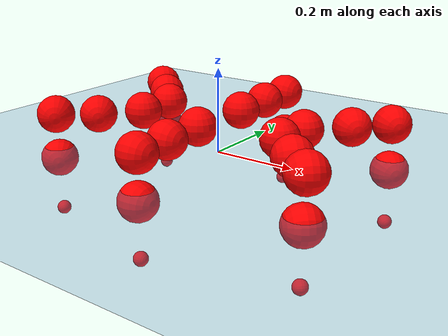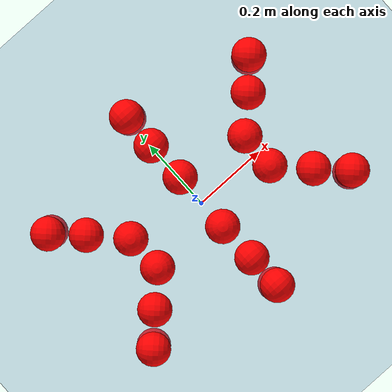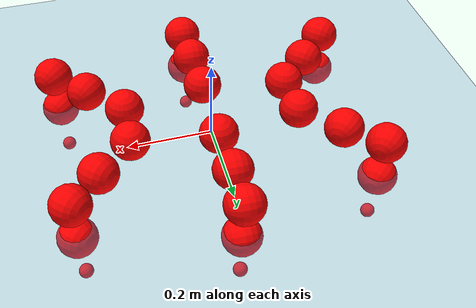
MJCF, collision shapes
<mujoco model="Golem">
  <compiler angle="radian" assetdir="assets" balanceinertia="true" inertiafromgeom="false"/>

  <option timestep="0.005" density="1.2" viscosity="2e-05"/>

  <size nkey="1"/>

  <visual>
    <quality shadowsize="8192"/>
    <map shadowclip="0.5"/>
  </visual>

  <default>
    <default class="/">
      <joint armature="0.01" damping="0.01" frictionloss="0.01"/>
      <geom contype="0" conaffinity="0" group="1" solref="-1000 -80"/>
      <site size="0.01 0.005 0.005" group="5"/>
      <general forcelimited="true" biastype="affine" gainprm="25" biasprm="0 -25 -0.5"/>
      <default class="visual">
        <geom type="mesh" group="2"/>
      </default>
      <default class="collision">
        <geom group="3"/>
      </default>
      <default class="foot">
        <geom size="0.01 0 0" condim="6" group="4" priority="1" solimp="0.015 1 0.01"/>
      </default>
      <default class="reward_collision_sphere">
        <geom group="5" rgba="1 0 0 1"/>
      </default>
    </default>
  </default>

  <asset>
    <texture type="skybox" colorspace="auto" name="//unnamed_texture_0" builtin="gradient" rgb1="0.95 0.95 0.95" rgb2="0.95 0.95 0.95" width="100" height="600"/>
    <texture type="2d" colorspace="auto" name="texplane" builtin="checker" rgb1="0.345 0.575 0.748" rgb2="0.345 0.575 0.748" markrgb="1 1 1" width="512" height="512"/>
    <material name="MatPlane" class="/" texture="texplane" texuniform="true" texrepeat="2 2" specular="0.9"/>
    <mesh name="body" class="/" file="body.stl" scale="0.001 0.001 0.001"/>
    <mesh name="coxa" class="/" file="coxa.stl" scale="0.001 0.001 0.001"/>
    <mesh name="femur" class="/" file="femur.stl" scale="0.001 0.001 0.001"/>
    <mesh name="tibia" class="/" file="tibia.stl" scale="0.001 0.001 0.001"/>
    <mesh name="tarsus" class="/" file="tarsus.stl" scale="0.001 0.001 0.001"/>
  </asset>

  <worldbody>
    <geom name="floor" class="/" size="100 100 0.125" type="plane" group="0" material="MatPlane"/>
    <light name="toplight_shadow" class="/" pos="0 0 5" dir="0.0990148 0.0990148 -0.990148" type="directional" ambient="0.04 0.04 0.04" diffuse="0.55 0.55 0.55" specular="0.12 0.12 0.12"/>
    <light name="toplight_fill" class="/" pos="0 0 5" dir="0.0990148 0.0990148 -0.990148" type="directional" castshadow="false" ambient="0.04 0.04 0.04" diffuse="0.3 0.3 0.3" specular="0.08 0.08 0.08"/>
    <body name="trunk" pos="0.00229978 0.00248523 0.00223979" quat="1 -2.2481e-05 -1.42347e-05 6.73234e-05">
      <inertial pos="0.000446487 -0.000953794 -0.00121682" quat="1 -0.000223313 -0.000201111 1.35754e-05" mass="5.21577" diaginertia="0.0267101 0.00596704 0.0279323"/>
      <joint name="//unnamed_joint_0" type="free"/>
      <geom name="//unnamed_geom_1" class="/" pos="0 0 0.0785473" quat="1 0 0 0" type="mesh" rgba="0.9 0.9 0.9 1" mesh="body"/>
      <site name="imu" class="/" pos="0.172822 0.013292 0.124284" size="0.011202"/>
      <camera name="track" class="/" pos="0 -1.80452 0" quat="0.707107 0.707107 0 0" mode="trackcom"/>
      <camera name="ego_camera" class="/" pos="0.160035 0 0.12273" quat="-0.5 -0.5 0.5 0.5"/>
      <body name="coxa_RR" pos="-0.219482 -0.0761928 0.0783235" quat="0.382605 -1.52652e-05 0.000184024 -0.923912">
        <inertial pos="-0.000544093 -0.00201833 -0.00117978" quat="0.999903 0.0127628 -0.00551623 -0.000349771" mass="0.271373" diaginertia="0.0270514 0.00571928 0.0266216"/>
        <joint name="coxa_joint_RR" class="/" pos="0 0 0" axis="-0.00113343 -0.00354845 -0.999993" range="-3.13511 3.14341" armature="0.00978954" damping="0" frictionloss="0.0111851"/>
        <geom name="//unnamed_geom_2" class="/" type="mesh" rgba="0.2 0.2 0.2 1" mesh="coxa"/>
        <geom name="//unnamed_geom_3" class="reward_collision_sphere" size="0.044808" pos="-0.0369311 0 0"/>
        <body name="femur_RR" pos="0.0704822 -0.00115221 -0.00411897" quat="0.499876 -0.499998 0.499906 0.50022">
          <inertial pos="-0.00196056 -0.00125567 -0.000278239" quat="0.999998 0.00200298 0.000480362 0.000586553" mass="0.282778" diaginertia="0.0285126 0.00603608 0.0286131"/>
          <joint name="femur_joint_RR" class="/" pos="0 0 0" axis="0.000241573 0.000262536 -1" range="-3.19319 3.08351" armature="0.0112353" damping="0.00965856" frictionloss="0.0127515"/>
          <geom name="//unnamed_geom_4" class="/" type="mesh" rgba="0.9 0.9 0.9 1" mesh="femur"/>
          <geom name="//unnamed_geom_5" class="reward_collision_sphere" size="0.044808"/>
          <body name="tibia_RR" pos="-0.00437471 -0.100059 0.00229893" quat="0.000728692 1 0.000651698 -0.000193849">
            <inertial pos="-0.00269764 0.000531846 2.36772e-05" quat="1 -0.000280083 -0.000386352 -0.000681626" mass="0.281877" diaginertia="0.0277282 0.00578574 0.026092"/>
            <joint name="tibia_joint_RR" class="/" pos="0 0 0" axis="-0.0103728 0.00693602 0.999922" range="-3.10596 3.19012" armature="0.0117389" damping="6.45885e-06" frictionloss="0.0111388"/>
            <geom name="//unnamed_geom_6" class="/" type="mesh" rgba="0.2 0.2 0.2 1" mesh="tibia"/>
            <geom name="//unnamed_geom_7" class="reward_collision_sphere" size="0.044808"/>
            <body name="tarsus_RR" pos="0.110084 -0.000475211 0.00216674" quat="1 1.97847e-05 5.91455e-06 3.41551e-05">
              <inertial pos="0.0772139 0.000513833 0.00188399" quat="0.500062 0.500463 0.499947 0.499527" mass="0.284716" diaginertia="0.0284424 0.0061485 0.0283297"/>
              <joint name="tarsus_joint_RR" class="/" pos="0 0 0" axis="-0.000994999 0.00719389 0.999974" range="-3.19267 3.19213" armature="0.0111642" damping="0.0393865" frictionloss="0.010124"/>
              <geom name="//unnamed_geom_8" class="/" type="mesh" rgba="0.9 0.9 0.9 1" mesh="tarsus"/>
              <geom name="foot_1" class="foot" size="0.0113309" pos="0.137876 0 0" quat="0 -0.707107 0 0.707107"/>
              <geom name="//unnamed_geom_10" class="reward_collision_sphere" size="0.044808"/>
              <geom name="//unnamed_geom_11" class="reward_collision_sphere" size="0.016803" pos="0.132336 0 0"/>
              <site name="foot_1" class="foot" pos="0.137876 0 0" quat="0 -0.707107 0 0.707107" size="0.011202"/>
            </body>
          </body>
        </body>
      </body>
      <body name="coxa_RM" pos="-0.000406857 -0.119169 0.0800777" quat="0.706469 0.000935216 8.73946e-05 -0.707743">
        <inertial pos="0.00292044 0.000327265 -0.00152062" quat="0.999962 -0.00306106 0.00705325 -0.0041437" mass="0.2766" diaginertia="0.0276113 0.00584123 0.0289092"/>
        <joint name="coxa_joint_RM" class="/" pos="0 0 0" axis="0.000576426 0.00109202 -0.999999" stiffness="0.0079082" range="-3.1617 3.12409" armature="0.0110339" damping="0.000752216" frictionloss="0.010316"/>
        <geom name="//unnamed_geom_12" class="/" type="mesh" rgba="0.2 0.2 0.2 1" mesh="coxa"/>
        <geom name="//unnamed_geom_13" class="reward_collision_sphere" size="0.044808" pos="-0.0369311 0 0"/>
        <body name="femur_RM" pos="0.0717664 0.00248775 -0.000941413" quat="0.499972 -0.500714 0.499069 0.500243">
          <inertial pos="-0.000335469 -0.00164905 0.000106608" quat="0.99999 -0.00113778 0.00343036 -0.00260536" mass="0.289054" diaginertia="0.0289641 0.005917 0.0287372"/>
          <joint name="femur_joint_RM" class="/" pos="0 0 0" axis="-0.00375344 -0.0115221 -0.999927" stiffness="0.00832054" range="-3.15834 3.1439" armature="0.0101644" damping="0.0266489" frictionloss="0.0111924"/>
          <geom name="//unnamed_geom_14" class="/" type="mesh" rgba="0.9 0.9 0.9 1" mesh="femur"/>
          <geom name="//unnamed_geom_15" class="reward_collision_sphere" size="0.044808"/>
          <body name="tibia_RM" pos="0.00148426 -0.0955533 0.00194747" quat="8.95361e-06 1 5.18852e-05 8.0542e-05">
            <inertial pos="0.00277825 -0.00226211 0.000103181" quat="0.999914 0.00548748 0.00507764 0.010756" mass="0.268245" diaginertia="0.0277415 0.00604932 0.0278218"/>
            <joint name="tibia_joint_RM" class="/" pos="0 0 0" axis="0.000201098 0.000461472 1" stiffness="0.000135723" range="-3.1921 3.1713" armature="0.011109" damping="0.01379" frictionloss="0.0109931"/>
            <geom name="//unnamed_geom_16" class="/" type="mesh" rgba="0.2 0.2 0.2 1" mesh="tibia"/>
            <geom name="//unnamed_geom_17" class="reward_collision_sphere" size="0.044808"/>
            <body name="tarsus_RM" pos="0.107856 -0.00017735 0.0030159" quat="1 -5.37349e-05 3.13755e-05 -2.5772e-05">
              <inertial pos="0.0739222 -0.00228823 0.00300975" quat="0.498758 0.509036 0.494622 0.497466" mass="0.288976" diaginertia="0.0273357 0.00579334 0.0268715"/>
              <joint name="tarsus_joint_RM" class="/" pos="0 0 0" axis="-0.000337954 -0.0010349 0.999999" range="-3.08681 3.13574" armature="0.012054" damping="0.0121209" frictionloss="0.0108995"/>
              <geom name="//unnamed_geom_18" class="/" type="mesh" rgba="0.9 0.9 0.9 1" mesh="tarsus"/>
              <geom name="foot_2" class="foot" size="0.0112725" pos="0.137876 0 0" quat="0 -0.707107 0 0.707107"/>
              <geom name="//unnamed_geom_20" class="reward_collision_sphere" size="0.044808"/>
              <geom name="//unnamed_geom_21" class="reward_collision_sphere" size="0.016803" pos="0.132336 0 0"/>
              <site name="foot_2" class="foot" pos="0.137876 0 0" quat="0 -0.707107 0 0.707107" size="0.011202"/>
            </body>
          </body>
        </body>
      </body>
      <body name="coxa_RF" pos="0.217959 -0.072991 0.0808097" quat="0.923852 0.000633757 6.95777e-05 -0.382749">
        <inertial pos="-0.000238623 0.00232724 -5.7636e-05" quat="1 -0.000394412 0.000110101 -0.000350374" mass="0.276968" diaginertia="0.0282903 0.00598187 0.0270112"/>
        <joint name="coxa_joint_RF" class="/" pos="0 0 0" axis="0.00175851 -0.000634004 -0.999998" range="-3.14056 3.13488" armature="0.0127412" damping="0.00724728" frictionloss="0.0108161"/>
        <geom name="//unnamed_geom_22" class="/" type="mesh" rgba="0.2 0.2 0.2 1" mesh="coxa"/>
        <geom name="//unnamed_geom_23" class="reward_collision_sphere" size="0.044808" pos="-0.0369311 0 0"/>
        <body name="femur_RF" pos="0.0746447 -0.00106581 -0.00099439" quat="0.500356 -0.499924 0.500086 0.499633">
          <inertial pos="0.00153335 -0.00277832 -0.000316535" quat="0.99997 -0.00362444 0.000342656 -0.00680995" mass="0.274094" diaginertia="0.028255 0.00565295 0.0280442"/>
          <joint name="femur_joint_RF" class="/" pos="0 0 0" axis="0.000455808 -0.0013498 -0.999999" stiffness="0.00627888" range="-3.18353 3.148" armature="0.00954169" damping="0.00868909" frictionloss="0.0127802"/>
          <geom name="//unnamed_geom_24" class="/" type="mesh" rgba="0.9 0.9 0.9 1" mesh="femur"/>
          <geom name="//unnamed_geom_25" class="reward_collision_sphere" size="0.044808"/>
          <body name="tibia_RF" pos="-0.00269212 -0.0981003 0.00129972" quat="-4.96382e-05 1 -0.000105323 2.93397e-05">
            <inertial pos="-0.0017809 0.000493482 0.00059208" quat="0.999999 -0.00010049 -0.000580333 -0.000825517" mass="0.287961" diaginertia="0.0272083 0.00613241 0.0274529"/>
            <joint name="tibia_joint_RF" class="/" pos="0 0 0" axis="0.00982492 -0.00117047 0.999951" range="-3.13781 3.09575" armature="0.0106812" damping="0.00653044" frictionloss="0.0112068"/>
            <geom name="//unnamed_geom_26" class="/" type="mesh" rgba="0.2 0.2 0.2 1" mesh="tibia"/>
            <geom name="//unnamed_geom_27" class="reward_collision_sphere" size="0.044808"/>
            <body name="tarsus_RF" pos="0.105052 0.00207251 0.00331471" quat="0.999999 0.000879391 -0.000836657 -6.68476e-05">
              <inertial pos="0.0734519 -0.000529719 0.000245394" quat="0.499958 0.500073 0.500554 0.499415" mass="0.283387" diaginertia="0.0278734 0.00600492 0.0285817"/>
              <joint name="tarsus_joint_RF" class="/" pos="0 0 0" axis="-0.000102068 0.0145913 0.999894" range="-3.16514 3.14202" armature="0.0125703" damping="0.0144701" frictionloss="0.0100375"/>
              <geom name="//unnamed_geom_28" class="/" type="mesh" rgba="0.9 0.9 0.9 1" mesh="tarsus"/>
              <geom name="foot_3" class="foot" size="0.0122732" pos="0.137876 0 0" quat="0 -0.707107 0 0.707107"/>
              <geom name="//unnamed_geom_30" class="reward_collision_sphere" size="0.044808"/>
              <geom name="//unnamed_geom_31" class="reward_collision_sphere" size="0.016803" pos="0.132336 0 0"/>
              <site name="foot_3" class="foot" pos="0.137876 0 0" quat="0 -0.707107 0 0.707107" size="0.011202"/>
            </body>
          </body>
        </body>
      </body>
      <body name="coxa_LR" pos="-0.221091 0.075971 0.0794817" quat="0.382911 -9.26088e-05 0.000177918 0.923785">
        <inertial pos="-0.00234587 0.00173227 -0.00129977" quat="0.999943 -0.00971652 0.00188505 -0.00393241" mass="0.281001" diaginertia="0.0292977 0.00631692 0.0290266"/>
        <joint name="coxa_joint_LR" class="/" pos="0 0 0" axis="-0.0088528 0.0112186 -0.999898" stiffness="0.0110223" range="-3.14183 3.0956" armature="0.00982965" damping="0" frictionloss="0.00963023"/>
        <geom name="//unnamed_geom_32" class="/" type="mesh" rgba="0.2 0.2 0.2 1" mesh="coxa"/>
        <geom name="//unnamed_geom_33" class="reward_collision_sphere" size="0.044808" pos="-0.0369311 0 0"/>
        <body name="femur_LR" pos="0.0767506 -0.00260583 -0.00109494" quat="0.499858 -0.500202 0.49991 0.50003">
          <inertial pos="-0.00113649 -0.00102333 0.000687218" quat="0.999933 -0.011038 0.0012882 -0.0033227" mass="0.280775" diaginertia="0.0285722 0.00621295 0.0282371"/>
          <joint name="femur_joint_LR" class="/" pos="0 0 0" axis="-0.0127716 -0.00239244 0.999916" range="-3.13305 3.15307" armature="0.0108499" damping="0" frictionloss="0.010114"/>
          <geom name="//unnamed_geom_34" class="/" type="mesh" rgba="0.9 0.9 0.9 1" mesh="femur"/>
          <geom name="//unnamed_geom_35" class="reward_collision_sphere" size="0.044808"/>
          <body name="tibia_LR" pos="-0.00197545 -0.0976823 0.00215478" quat="-4.28337e-05 0.999999 -0.00130403 -0.000173293">
            <inertial pos="-0.000397656 -0.000333345 0.000337308" quat="0.999989 -0.00125918 0.00246029 -0.00387047" mass="0.29059" diaginertia="0.0288316 0.00611369 0.0289327"/>
            <joint name="tibia_joint_LR" class="/" pos="0 0 0" axis="-0.00247943 0.00932497 -0.999953" range="-3.18271 3.08291" armature="0.011632" damping="0.00426174" frictionloss="0.010761"/>
            <geom name="//unnamed_geom_36" class="/" type="mesh" rgba="0.2 0.2 0.2 1" mesh="tibia"/>
            <geom name="//unnamed_geom_37" class="reward_collision_sphere" size="0.044808"/>
            <body name="tarsus_LR" pos="0.106639 0.000450854 0.00305683" quat="0.999999 -0.00029014 0.000962645 0.000732959">
              <inertial pos="0.0765625 0.00029511 -0.00193205" quat="0.500518 0.499666 0.501125 0.498687" mass="0.273801" diaginertia="0.0285856 0.00581141 0.02832"/>
              <joint name="tarsus_joint_LR" class="/" pos="0 0 0" axis="-0.0100972 0.000624236 -0.999949" range="-3.19492 3.0841" armature="0.010671" damping="0" frictionloss="0.0116959"/>
              <geom name="//unnamed_geom_38" class="/" type="mesh" rgba="0.9 0.9 0.9 1" mesh="tarsus"/>
              <geom name="foot_4" class="foot" size="0.0123271" pos="0.137876 0 0" quat="0.707107 0 -0.707107 0"/>
              <geom name="//unnamed_geom_40" class="reward_collision_sphere" size="0.044808"/>
              <geom name="//unnamed_geom_41" class="reward_collision_sphere" size="0.016803" pos="0.132336 0 0"/>
              <site name="foot_4" class="foot" pos="0.137876 0 0" quat="0.707107 0 -0.707107 0" size="0.011202"/>
            </body>
          </body>
        </body>
      </body>
      <body name="coxa_LM" pos="0.0024595 0.11997 0.08102" quat="0.706453 -0.0002423 0.000734998 0.707759">
        <inertial pos="0.000328993 -0.000989379 -0.00123506" quat="0.999912 0.00285435 0.0094888 0.00884248" mass="0.277507" diaginertia="0.0271468 0.00583022 0.0276061"/>
        <joint name="coxa_joint_LM" class="/" pos="0 0 0" axis="0.00262388 -0.00487861 -0.999985" range="-3.08407 3.12481" armature="0.01218" damping="0.0223078" frictionloss="0.0127763"/>
        <geom name="//unnamed_geom_42" class="/" type="mesh" rgba="0.2 0.2 0.2 1" mesh="coxa"/>
        <geom name="//unnamed_geom_43" class="reward_collision_sphere" size="0.044808" pos="-0.0369311 0 0"/>
        <body name="femur_LM" pos="0.0717223 0.00168264 0.00146997" quat="0.500727 -0.499439 0.500526 0.499305">
          <inertial pos="0.00191771 -0.00291149 0.0018712" quat="0.999932 0.011319 -0.00197961 -0.00179978" mass="0.281046" diaginertia="0.029059 0.00586256 0.0282543"/>
          <joint name="femur_joint_LM" class="/" pos="0 0 0" axis="0.0112001 -0.010016 0.999887" range="-3.14583 3.08318" armature="0.0124533" damping="0" frictionloss="0.0112702"/>
          <geom name="//unnamed_geom_44" class="/" type="mesh" rgba="0.9 0.9 0.9 1" mesh="femur"/>
          <geom name="//unnamed_geom_45" class="reward_collision_sphere" size="0.044808"/>
          <body name="tibia_LM" pos="-0.00270055 -0.096009 -0.00230281" quat="-0.000368754 1 0.000110707 0.000885115">
            <inertial pos="-0.00043185 -0.00268868 0.000614425" quat="0.99991 -0.00482607 0.00148604 -0.0124696" mass="0.277931" diaginertia="0.0285666 0.00618154 0.0281274"/>
            <joint name="tibia_joint_LM" class="/" pos="0 0 0" axis="3.42041e-06 -0.000122702 -1" range="-3.13026 3.14735" armature="0.0125173" damping="0.00503608" frictionloss="0.00995759"/>
            <geom name="//unnamed_geom_46" class="/" type="mesh" rgba="0.2 0.2 0.2 1" mesh="tibia"/>
            <geom name="//unnamed_geom_47" class="reward_collision_sphere" size="0.044808"/>
            <body name="tarsus_LM" pos="0.108589 -9.21122e-05 0.00228265" quat="1 -0.000238388 0.00063051 -0.000448107">
              <inertial pos="0.0710829 -0.000477303 -0.00213661" quat="0.500338 0.49978 0.50008 0.499801" mass="0.283845" diaginertia="0.0271599 0.00587463 0.0281398"/>
              <joint name="tarsus_joint_LM" class="/" pos="0 0 0" axis="0.0019614 0.00364638 -0.999991" range="-3.10136 3.13411" armature="0.0127113" damping="0.00549818" frictionloss="0.0119489"/>
              <geom name="//unnamed_geom_48" class="/" type="mesh" rgba="0.9 0.9 0.9 1" mesh="tarsus"/>
              <geom name="foot_5" class="foot" size="0.0118331" pos="0.137876 0 0" quat="0.707107 0 -0.707107 0"/>
              <geom name="//unnamed_geom_50" class="reward_collision_sphere" size="0.044808"/>
              <geom name="//unnamed_geom_51" class="reward_collision_sphere" size="0.016803" pos="0.132336 0 0"/>
              <site name="foot_5" class="foot" pos="0.137876 0 0" quat="0.707107 0 -0.707107 0" size="0.011202"/>
            </body>
          </body>
        </body>
      </body>
      <body name="coxa_LF" pos="0.221084 0.0777229 0.0763247" quat="0.923699 8.40327e-05 0.000303767 0.383119">
        <inertial pos="0.000312146 -0.000573273 -0.00113551" quat="0.999905 0.00529885 -0.0014053 -0.0126539" mass="0.265176" diaginertia="0.0273028 0.00585442 0.0274363"/>
        <joint name="coxa_joint_LF" class="/" pos="0 0 0" axis="-0.00322638 -0.00184657 -0.999993" stiffness="0.0139991" range="-3.1743 3.17652" armature="0.0125479" damping="0.00922103" frictionloss="0.00967776"/>
        <geom name="//unnamed_geom_52" class="/" type="mesh" rgba="0.2 0.2 0.2 1" mesh="coxa"/>
        <geom name="//unnamed_geom_53" class="reward_collision_sphere" size="0.044808" pos="-0.0369311 0 0"/>
        <body name="femur_LF" pos="0.0738964 -0.00217804 0.000650994" quat="0.499188 -0.500778 0.499847 0.500186">
          <inertial pos="0.0019961 -0.000537656 -0.000573142" quat="1 6.31824e-06 1.30825e-05 -1.06444e-05" mass="0.283247" diaginertia="0.0281034 0.00592428 0.026854"/>
          <joint name="femur_joint_LF" class="/" pos="0 0 0" axis="-0.00102694 -0.000669054 0.999999" range="-3.08771 3.12489" armature="0.0127107" damping="0.0189903" frictionloss="0.0112872"/>
          <geom name="//unnamed_geom_54" class="/" type="mesh" rgba="0.9 0.9 0.9 1" mesh="femur"/>
          <geom name="//unnamed_geom_55" class="reward_collision_sphere" size="0.044808"/>
          <body name="tibia_LF" pos="-0.000886886 -0.0957594 0.00303703" quat="-0.000273534 1 0.000293251 1.24822e-05">
            <inertial pos="-0.000287923 0.00292711 0.0016159" quat="1 0.000500102 -0.000734547 0.000192493" mass="0.275221" diaginertia="0.0282367 0.00592825 0.027796"/>
            <joint name="tibia_joint_LF" class="/" pos="0 0 0" axis="0.00524811 8.17197e-05 -0.999986" range="-3.14413 3.12284" armature="0.0096294" damping="0" frictionloss="0.0123668"/>
            <geom name="//unnamed_geom_56" class="/" type="mesh" rgba="0.2 0.2 0.2 1" mesh="tibia"/>
            <geom name="//unnamed_geom_57" class="reward_collision_sphere" size="0.044808"/>
            <body name="tarsus_LF" pos="0.110301 0.00192044 0.00119621" quat="0.999999 -0.00100118 0.000307386 0.000547034">
              <inertial pos="0.0747071 -0.000603207 -0.00192446" quat="0.494504 0.511908 0.497731 0.495661" mass="0.289617" diaginertia="0.0280523 0.0062021 0.0286133"/>
              <joint name="tarsus_joint_LF" class="/" pos="0 0 0" axis="-0.00631407 0.00793762 -0.999949" stiffness="0.0286535" range="-3.19524 3.17615" armature="0.0110975" damping="0.0216577" frictionloss="0.0116352"/>
              <geom name="//unnamed_geom_58" class="/" type="mesh" rgba="0.9 0.9 0.9 1" mesh="tarsus"/>
              <geom name="foot_6" class="foot" size="0.0106716" pos="0.137876 0 0" quat="0.707107 0 -0.707107 0"/>
              <geom name="//unnamed_geom_60" class="reward_collision_sphere" size="0.044808"/>
              <geom name="//unnamed_geom_61" class="reward_collision_sphere" size="0.016803" pos="0.132336 0 0"/>
              <site name="foot_6" class="foot" pos="0.137876 0 0" quat="0.707107 0 -0.707107 0" size="0.011202"/>
            </body>
          </body>
        </body>
      </body>
    </body>
  </worldbody>

  <contact>
    <pair class="/" geom1="floor" geom2="foot_1" name="//unnamed_contact_0"/>
    <pair class="/" geom1="floor" geom2="foot_2" name="//unnamed_contact_1"/>
    <pair class="/" geom1="floor" geom2="foot_3" name="//unnamed_contact_2"/>
    <pair class="/" geom1="floor" geom2="foot_4" name="//unnamed_contact_3"/>
    <pair class="/" geom1="floor" geom2="foot_5" name="//unnamed_contact_4"/>
    <pair class="/" geom1="floor" geom2="foot_6" name="//unnamed_contact_5"/>
  </contact>

  <actuator>
    <general name="coxa_joint_RR" class="/" joint="coxa_joint_RR" forcerange="-7.85881 7.85881" gainprm="26.4804" biasprm="0 -26.4804 -0.603014"/>
    <general name="femur_joint_RR" class="/" joint="femur_joint_RR" forcerange="-8.25489 8.25489" gainprm="26.4804" biasprm="0 -26.4804 -0.603014"/>
    <general name="tibia_joint_RR" class="/" joint="tibia_joint_RR" forcerange="-8.30808 8.30808" gainprm="26.4804" biasprm="0 -26.4804 -0.603014"/>
    <general name="tarsus_joint_RR" class="/" joint="tarsus_joint_RR" forcerange="-9.04377 9.04377" gainprm="26.4804" biasprm="0 -26.4804 -0.603014"/>
    <general name="coxa_joint_RM" class="/" joint="coxa_joint_RM" forcerange="-7.52253 7.52253" gainprm="26.4804" biasprm="0 -26.4804 -0.603014"/>
    <general name="femur_joint_RM" class="/" joint="femur_joint_RM" forcerange="-8.38072 8.38072" gainprm="26.4804" biasprm="0 -26.4804 -0.603014"/>
    <general name="tibia_joint_RM" class="/" joint="tibia_joint_RM" forcerange="-7.38841 7.38841" gainprm="26.4804" biasprm="0 -26.4804 -0.603014"/>
    <general name="tarsus_joint_RM" class="/" joint="tarsus_joint_RM" forcerange="-7.87742 7.87742" gainprm="26.4804" biasprm="0 -26.4804 -0.603014"/>
    <general name="coxa_joint_RF" class="/" joint="coxa_joint_RF" forcerange="-7.43687 7.43687" gainprm="26.4804" biasprm="0 -26.4804 -0.603014"/>
    <general name="femur_joint_RF" class="/" joint="femur_joint_RF" forcerange="-7.47132 7.47132" gainprm="26.4804" biasprm="0 -26.4804 -0.603014"/>
    <general name="tibia_joint_RF" class="/" joint="tibia_joint_RF" forcerange="-7.58993 7.58993" gainprm="26.4804" biasprm="0 -26.4804 -0.603014"/>
    <general name="tarsus_joint_RF" class="/" joint="tarsus_joint_RF" forcerange="-8.83525 8.83525" gainprm="26.4804" biasprm="0 -26.4804 -0.603014"/>
    <general name="coxa_joint_LR" class="/" joint="coxa_joint_LR" forcerange="-8.14622 8.14622" gainprm="26.4804" biasprm="0 -26.4804 -0.603014"/>
    <general name="femur_joint_LR" class="/" joint="femur_joint_LR" forcerange="-8.10159 8.10159" gainprm="26.4804" biasprm="0 -26.4804 -0.603014"/>
    <general name="tibia_joint_LR" class="/" joint="tibia_joint_LR" forcerange="-8.2562 8.2562" gainprm="26.4804" biasprm="0 -26.4804 -0.603014"/>
    <general name="tarsus_joint_LR" class="/" joint="tarsus_joint_LR" forcerange="-8.45994 8.45994" gainprm="26.4804" biasprm="0 -26.4804 -0.603014"/>
    <general name="coxa_joint_LM" class="/" joint="coxa_joint_LM" forcerange="-9.03009 9.03009" gainprm="26.4804" biasprm="0 -26.4804 -0.603014"/>
    <general name="femur_joint_LM" class="/" joint="femur_joint_LM" forcerange="-8.15656 8.15656" gainprm="26.4804" biasprm="0 -26.4804 -0.603014"/>
    <general name="tibia_joint_LM" class="/" joint="tibia_joint_LM" forcerange="-8.45909 8.45909" gainprm="26.4804" biasprm="0 -26.4804 -0.603014"/>
    <general name="tarsus_joint_LM" class="/" joint="tarsus_joint_LM" forcerange="-8.07813 8.07813" gainprm="26.4804" biasprm="0 -26.4804 -0.603014"/>
    <general name="coxa_joint_LF" class="/" joint="coxa_joint_LF" forcerange="-7.63163 7.63163" gainprm="26.4804" biasprm="0 -26.4804 -0.603014"/>
    <general name="femur_joint_LF" class="/" joint="femur_joint_LF" forcerange="-8.29731 8.29731" gainprm="26.4804" biasprm="0 -26.4804 -0.603014"/>
    <general name="tibia_joint_LF" class="/" joint="tibia_joint_LF" forcerange="-8.03834 8.03834" gainprm="26.4804" biasprm="0 -26.4804 -0.603014"/>
    <general name="tarsus_joint_LF" class="/" joint="tarsus_joint_LF" forcerange="-7.4611 7.4611" gainprm="26.4804" biasprm="0 -26.4804 -0.603014"/>
  </actuator>

  <sensor>
    <gyro site="imu" name="imu_angular_velocity"/>
    <velocimeter site="imu" name="imu_linear_velocity"/>
    <framelinvel objtype="site" objname="foot_1" name="foot_1_global_linear_velocity"/>
    <framelinvel objtype="site" objname="foot_2" name="foot_2_global_linear_velocity"/>
    <framelinvel objtype="site" objname="foot_3" name="foot_3_global_linear_velocity"/>
    <framelinvel objtype="site" objname="foot_4" name="foot_4_global_linear_velocity"/>
    <framelinvel objtype="site" objname="foot_5" name="foot_5_global_linear_velocity"/>
    <framelinvel objtype="site" objname="foot_6" name="foot_6_global_linear_velocity"/>
  </sensor>

  <keyframe>
    <key name="home" qpos="0 0 0.1457 1 0 0 0 0 0 0 0 0 0 0 0 0 0 0 0 0 0 0 0 0 0 0 0 0 0 0 0"/>
  </keyframe>
</mujoco>
